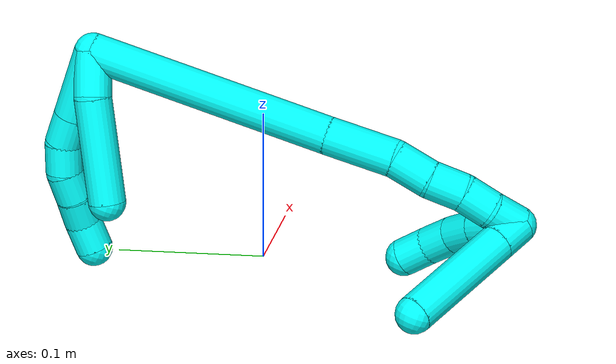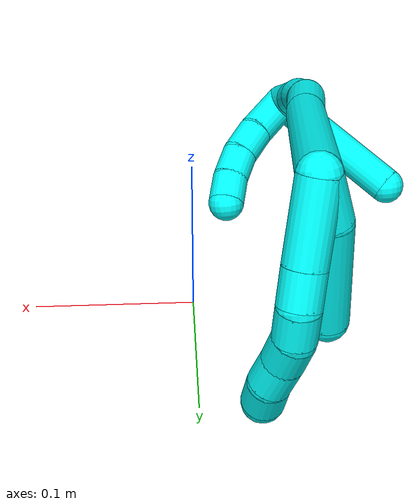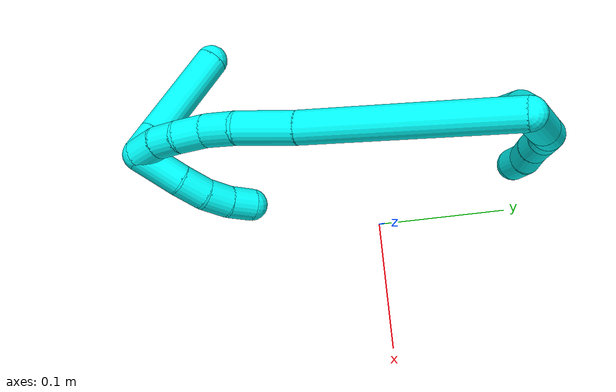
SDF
<sdf version="1.7">
 <world name="default">
  <model name="3">
   <static>0</static>
   <link name="3">
    <collision name="collision-cylinder-e_1_2_8">
     <pose>0.005854 0.000753 -0.023373 -3.10938 0.245285 -2.88167</pose>
     <geometry><cylinder><radius>0.0125</radius><length>0.048212</length></cylinder></geometry>
     <surface>
      <friction><ode><mu>1.16</mu><mu2>1.16</mu2><slip1>0</slip1><slip2>0</slip2></ode></friction>
      <contact><ode><kp>1e+06</kp><kd>1</kd><max_vel>0</max_vel><min_depth>0.001</min_depth></ode></contact>
     </surface>
    </collision>
    <visual name="visual-cylinder-e_1_2_8">
     <pose>0.005854 0.000753 -0.023373 -3.10938 0.245285 -2.88167</pose>
     <geometry><cylinder><radius>0.0125</radius><length>0.048212</length></cylinder></geometry>
     <material><ambient>0.003922 1 0.996078 1</ambient></material>
    </visual>
    <collision name="collision-cylinder-e_2_8_9">
     <pose>0.014175 0.001824 -0.057246 -3.11137 0.230662 -2.88219</pose>
     <geometry><cylinder><radius>0.0125</radius><length>0.021582</length></cylinder></geometry>
     <surface>
      <friction><ode><mu>1.16</mu><mu2>1.16</mu2><slip1>0</slip1><slip2>0</slip2></ode></friction>
      <contact><ode><kp>1e+06</kp><kd>1</kd><max_vel>0</max_vel><min_depth>0.001</min_depth></ode></contact>
     </surface>
    </collision>
    <visual name="visual-cylinder-e_2_8_9">
     <pose>0.014175 0.001824 -0.057246 -3.11137 0.230662 -2.88219</pose>
     <geometry><cylinder><radius>0.0125</radius><length>0.021582</length></cylinder></geometry>
     <material><ambient>0.003922 1 0.996078 1</ambient></material>
    </visual>
    <collision name="collision-cylinder-e_3_9_10">
     <pose>0.018653 -0.000953 -0.077092 2.82185 0.201501 1.12</pose>
     <geometry><cylinder><radius>0.0125</radius><length>0.020095</length></cylinder></geometry>
     <surface>
      <friction><ode><mu>1.16</mu><mu2>1.16</mu2><slip1>0</slip1><slip2>0</slip2></ode></friction>
      <contact><ode><kp>1e+06</kp><kd>1</kd><max_vel>0</max_vel><min_depth>0.001</min_depth></ode></contact>
     </surface>
    </collision>
    <visual name="visual-cylinder-e_3_9_10">
     <pose>0.018653 -0.000953 -0.077092 2.82185 0.201501 1.12</pose>
     <geometry><cylinder><radius>0.0125</radius><length>0.020095</length></cylinder></geometry>
     <material><ambient>0.003922 1 0.996078 1</ambient></material>
    </visual>
    <collision name="collision-cylinder-e_4_10_11">
     <pose>0.024407 -0.009281 -0.094148 2.54528 0.381934 1.12304</pose>
     <geometry><cylinder><radius>0.0125</radius><length>0.020085</length></cylinder></geometry>
     <surface>
      <friction><ode><mu>1.16</mu><mu2>1.16</mu2><slip1>0</slip1><slip2>0</slip2></ode></friction>
      <contact><ode><kp>1e+06</kp><kd>1</kd><max_vel>0</max_vel><min_depth>0.001</min_depth></ode></contact>
     </surface>
    </collision>
    <visual name="visual-cylinder-e_4_10_11">
     <pose>0.024407 -0.009281 -0.094148 2.54528 0.381934 1.12304</pose>
     <geometry><cylinder><radius>0.0125</radius><length>0.020085</length></cylinder></geometry>
     <material><ambient>0.003922 1 0.996078 1</ambient></material>
    </visual>
    <collision name="collision-cylinder-e_5_11_12">
     <pose>0.03264 -0.019013 -0.109579 2.61394 0.465661 1.44089</pose>
     <geometry><cylinder><radius>0.0125</radius><length>0.020001</length></cylinder></geometry>
     <surface>
      <friction><ode><mu>1.16</mu><mu2>1.16</mu2><slip1>0</slip1><slip2>0</slip2></ode></friction>
      <contact><ode><kp>1e+06</kp><kd>1</kd><max_vel>0</max_vel><min_depth>0.001</min_depth></ode></contact>
     </surface>
    </collision>
    <visual name="visual-cylinder-e_5_11_12">
     <pose>0.03264 -0.019013 -0.109579 2.61394 0.465661 1.44089</pose>
     <geometry><cylinder><radius>0.0125</radius><length>0.020001</length></cylinder></geometry>
     <material><ambient>0.003922 1 0.996078 1</ambient></material>
    </visual>
    <collision name="collision-cylinder-e_6_12_6">
     <pose>0.039712 -0.029595 -0.124821 2.46165 0.260766 0.710036</pose>
     <geometry><cylinder><radius>0.0125</radius><length>0.020024</length></cylinder></geometry>
     <surface>
      <friction><ode><mu>1.16</mu><mu2>1.16</mu2><slip1>0</slip1><slip2>0</slip2></ode></friction>
      <contact><ode><kp>1e+06</kp><kd>1</kd><max_vel>0</max_vel><min_depth>0.001</min_depth></ode></contact>
     </surface>
    </collision>
    <visual name="visual-cylinder-e_6_12_6">
     <pose>0.039712 -0.029595 -0.124821 2.46165 0.260766 0.710036</pose>
     <geometry><cylinder><radius>0.0125</radius><length>0.020024</length></cylinder></geometry>
     <material><ambient>0.003922 1 0.996078 1</ambient></material>
    </visual>
    <collision name="collision-cylinder-e_1_2_13">
     <pose>-0.001916 -0.00535 -0.013674 2.76865 -0.129749 -0.663269</pose>
     <geometry><cylinder><radius>0.0125</radius><length>0.029616</length></cylinder></geometry>
     <surface>
      <friction><ode><mu>1.16</mu><mu2>1.16</mu2><slip1>0</slip1><slip2>0</slip2></ode></friction>
      <contact><ode><kp>1e+06</kp><kd>1</kd><max_vel>0</max_vel><min_depth>0.001</min_depth></ode></contact>
     </surface>
    </collision>
    <visual name="visual-cylinder-e_1_2_13">
     <pose>-0.001916 -0.00535 -0.013674 2.76865 -0.129749 -0.663269</pose>
     <geometry><cylinder><radius>0.0125</radius><length>0.029616</length></cylinder></geometry>
     <material><ambient>0.003922 1 0.996078 1</ambient></material>
    </visual>
    <collision name="collision-cylinder-e_2_13_5">
     <pose>-0.000578 -0.02627 -0.058741 2.68115 0.092599 0.390342</pose>
     <geometry><cylinder><radius>0.0125</radius><length>0.070384</length></cylinder></geometry>
     <surface>
      <friction><ode><mu>1.16</mu><mu2>1.16</mu2><slip1>0</slip1><slip2>0</slip2></ode></friction>
      <contact><ode><kp>1e+06</kp><kd>1</kd><max_vel>0</max_vel><min_depth>0.001</min_depth></ode></contact>
     </surface>
    </collision>
    <visual name="visual-cylinder-e_2_13_5">
     <pose>-0.000578 -0.02627 -0.058741 2.68115 0.092599 0.390342</pose>
     <geometry><cylinder><radius>0.0125</radius><length>0.070384</length></cylinder></geometry>
     <material><ambient>0.003922 1 0.996078 1</ambient></material>
    </visual>
    <collision name="collision-cylinder-e_1_2_14">
     <pose>0.001511 -0.081553 0.003239 1.5311 0.018513 0.017792</pose>
     <geometry><cylinder><radius>0.0125</radius><length>0.163263</length></cylinder></geometry>
     <surface>
      <friction><ode><mu>1.16</mu><mu2>1.16</mu2><slip1>0</slip1><slip2>0</slip2></ode></friction>
      <contact><ode><kp>1e+06</kp><kd>1</kd><max_vel>0</max_vel><min_depth>0.001</min_depth></ode></contact>
     </surface>
    </collision>
    <visual name="visual-cylinder-e_1_2_14">
     <pose>0.001511 -0.081553 0.003239 1.5311 0.018513 0.017792</pose>
     <geometry><cylinder><radius>0.0125</radius><length>0.163263</length></cylinder></geometry>
     <material><ambient>0.003922 1 0.996078 1</ambient></material>
    </visual>
    <collision name="collision-cylinder-e_2_14_15">
     <pose>0.002281 -0.185947 0.00791 1.50822 -0.032374 -0.030409</pose>
     <geometry><cylinder><radius>0.0125</radius><length>0.045794</length></cylinder></geometry>
     <surface>
      <friction><ode><mu>1.16</mu><mu2>1.16</mu2><slip1>0</slip1><slip2>0</slip2></ode></friction>
      <contact><ode><kp>1e+06</kp><kd>1</kd><max_vel>0</max_vel><min_depth>0.001</min_depth></ode></contact>
     </surface>
    </collision>
    <visual name="visual-cylinder-e_2_14_15">
     <pose>0.002281 -0.185947 0.00791 1.50822 -0.032374 -0.030409</pose>
     <geometry><cylinder><radius>0.0125</radius><length>0.045794</length></cylinder></geometry>
     <material><ambient>0.003922 1 0.996078 1</ambient></material>
    </visual>
    <collision name="collision-cylinder-e_3_15_16">
     <pose>0.002095 -0.221485 0.007219 1.73635 0.043066 0.050856</pose>
     <geometry><cylinder><radius>0.0125</radius><length>0.025772</length></cylinder></geometry>
     <surface>
      <friction><ode><mu>1.16</mu><mu2>1.16</mu2><slip1>0</slip1><slip2>0</slip2></ode></friction>
      <contact><ode><kp>1e+06</kp><kd>1</kd><max_vel>0</max_vel><min_depth>0.001</min_depth></ode></contact>
     </surface>
    </collision>
    <visual name="visual-cylinder-e_3_15_16">
     <pose>0.002095 -0.221485 0.007219 1.73635 0.043066 0.050856</pose>
     <geometry><cylinder><radius>0.0125</radius><length>0.025772</length></cylinder></geometry>
     <material><ambient>0.003922 1 0.996078 1</ambient></material>
    </visual>
    <collision name="collision-cylinder-e_4_16_17">
     <pose>0.004571 -0.245636 0.004788 1.59786 0.166143 0.17068</pose>
     <geometry><cylinder><radius>0.0125</radius><length>0.023236</length></cylinder></geometry>
     <surface>
      <friction><ode><mu>1.16</mu><mu2>1.16</mu2><slip1>0</slip1><slip2>0</slip2></ode></friction>
      <contact><ode><kp>1e+06</kp><kd>1</kd><max_vel>0</max_vel><min_depth>0.001</min_depth></ode></contact>
     </surface>
    </collision>
    <visual name="visual-cylinder-e_4_16_17">
     <pose>0.004571 -0.245636 0.004788 1.59786 0.166143 0.17068</pose>
     <geometry><cylinder><radius>0.0125</radius><length>0.023236</length></cylinder></geometry>
     <material><ambient>0.003922 1 0.996078 1</ambient></material>
    </visual>
    <collision name="collision-cylinder-e_5_17_18">
     <pose>0.008387 -0.267002 0.002272 1.78974 0.184434 0.229624</pose>
     <geometry><cylinder><radius>0.0125</radius><length>0.020659</length></cylinder></geometry>
     <surface>
      <friction><ode><mu>1.16</mu><mu2>1.16</mu2><slip1>0</slip1><slip2>0</slip2></ode></friction>
      <contact><ode><kp>1e+06</kp><kd>1</kd><max_vel>0</max_vel><min_depth>0.001</min_depth></ode></contact>
     </surface>
    </collision>
    <visual name="visual-cylinder-e_5_17_18">
     <pose>0.008387 -0.267002 0.002272 1.78974 0.184434 0.229624</pose>
     <geometry><cylinder><radius>0.0125</radius><length>0.020659</length></cylinder></geometry>
     <material><ambient>0.003922 1 0.996078 1</ambient></material>
    </visual>
    <collision name="collision-cylinder-e_6_18_1">
     <pose>0.01456 -0.286409 -0.002103 1.79546 0.413971 0.515088</pose>
     <geometry><cylinder><radius>0.0125</radius><length>0.021277</length></cylinder></geometry>
     <surface>
      <friction><ode><mu>1.16</mu><mu2>1.16</mu2><slip1>0</slip1><slip2>0</slip2></ode></friction>
      <contact><ode><kp>1e+06</kp><kd>1</kd><max_vel>0</max_vel><min_depth>0.001</min_depth></ode></contact>
     </surface>
    </collision>
    <visual name="visual-cylinder-e_6_18_1">
     <pose>0.01456 -0.286409 -0.002103 1.79546 0.413971 0.515088</pose>
     <geometry><cylinder><radius>0.0125</radius><length>0.021277</length></cylinder></geometry>
     <material><ambient>0.003922 1 0.996078 1</ambient></material>
    </visual>
    <collision name="collision-cylinder-e_1_1_19">
     <pose>0.029525 -0.283647 -0.012387 -2.15557 0.628579 -1.08823</pose>
     <geometry><cylinder><radius>0.0125</radius><length>0.036345</length></cylinder></geometry>
     <surface>
      <friction><ode><mu>1.16</mu><mu2>1.16</mu2><slip1>0</slip1><slip2>0</slip2></ode></friction>
      <contact><ode><kp>1e+06</kp><kd>1</kd><max_vel>0</max_vel><min_depth>0.001</min_depth></ode></contact>
     </surface>
    </collision>
    <visual name="visual-cylinder-e_1_1_19">
     <pose>0.029525 -0.283647 -0.012387 -2.15557 0.628579 -1.08823</pose>
     <geometry><cylinder><radius>0.0125</radius><length>0.036345</length></cylinder></geometry>
     <material><ambient>0.003922 1 0.996078 1</ambient></material>
    </visual>
    <collision name="collision-cylinder-e_2_19_20">
     <pose>0.046273 -0.264304 -0.026838 -2.30042 0.567732 -1.15594</pose>
     <geometry><cylinder><radius>0.0125</radius><length>0.022552</length></cylinder></geometry>
     <surface>
      <friction><ode><mu>1.16</mu><mu2>1.16</mu2><slip1>0</slip1><slip2>0</slip2></ode></friction>
      <contact><ode><kp>1e+06</kp><kd>1</kd><max_vel>0</max_vel><min_depth>0.001</min_depth></ode></contact>
     </surface>
    </collision>
    <visual name="visual-cylinder-e_2_19_20">
     <pose>0.046273 -0.264304 -0.026838 -2.30042 0.567732 -1.15594</pose>
     <geometry><cylinder><radius>0.0125</radius><length>0.022552</length></cylinder></geometry>
     <material><ambient>0.003922 1 0.996078 1</ambient></material>
    </visual>
    <collision name="collision-cylinder-e_3_20_21">
     <pose>0.056175 -0.250718 -0.040302 -2.40226 0.378762 -0.91876</pose>
     <geometry><cylinder><radius>0.0125</radius><length>0.020761</length></cylinder></geometry>
     <surface>
      <friction><ode><mu>1.16</mu><mu2>1.16</mu2><slip1>0</slip1><slip2>0</slip2></ode></friction>
      <contact><ode><kp>1e+06</kp><kd>1</kd><max_vel>0</max_vel><min_depth>0.001</min_depth></ode></contact>
     </surface>
    </collision>
    <visual name="visual-cylinder-e_3_20_21">
     <pose>0.056175 -0.250718 -0.040302 -2.40226 0.378762 -0.91876</pose>
     <geometry><cylinder><radius>0.0125</radius><length>0.020761</length></cylinder></geometry>
     <material><ambient>0.003922 1 0.996078 1</ambient></material>
    </visual>
    <collision name="collision-cylinder-e_4_21_4">
     <pose>0.062046 -0.237604 -0.054882 -2.41568 0.201206 -0.519577</pose>
     <geometry><cylinder><radius>0.0125</radius><length>0.020343</length></cylinder></geometry>
     <surface>
      <friction><ode><mu>1.16</mu><mu2>1.16</mu2><slip1>0</slip1><slip2>0</slip2></ode></friction>
      <contact><ode><kp>1e+06</kp><kd>1</kd><max_vel>0</max_vel><min_depth>0.001</min_depth></ode></contact>
     </surface>
    </collision>
    <visual name="visual-cylinder-e_4_21_4">
     <pose>0.062046 -0.237604 -0.054882 -2.41568 0.201206 -0.519577</pose>
     <geometry><cylinder><radius>0.0125</radius><length>0.020343</length></cylinder></geometry>
     <material><ambient>0.003922 1 0.996078 1</ambient></material>
    </visual>
    <collision name="collision-cylinder-e_1_1_22">
     <pose>0.011566 -0.292227 -0.010931 -2.63707 -0.763095 1.99952</pose>
     <geometry><cylinder><radius>0.0125</radius><length>0.021048</length></cylinder></geometry>
     <surface>
      <friction><ode><mu>1.16</mu><mu2>1.16</mu2><slip1>0</slip1><slip2>0</slip2></ode></friction>
      <contact><ode><kp>1e+06</kp><kd>1</kd><max_vel>0</max_vel><min_depth>0.001</min_depth></ode></contact>
     </surface>
    </collision>
    <visual name="visual-cylinder-e_1_1_22">
     <pose>0.011566 -0.292227 -0.010931 -2.63707 -0.763095 1.99952</pose>
     <geometry><cylinder><radius>0.0125</radius><length>0.021048</length></cylinder></geometry>
     <material><ambient>0.003922 1 0.996078 1</ambient></material>
    </visual>
    <collision name="collision-cylinder-e_2_22_3">
     <pose>-0.023014 -0.274726 -0.042522 -2.63532 -0.76385 1.9972</pose>
     <geometry><cylinder><radius>0.0125</radius><length>0.078952</length></cylinder></geometry>
     <surface>
      <friction><ode><mu>1.16</mu><mu2>1.16</mu2><slip1>0</slip1><slip2>0</slip2></ode></friction>
      <contact><ode><kp>1e+06</kp><kd>1</kd><max_vel>0</max_vel><min_depth>0.001</min_depth></ode></contact>
     </surface>
    </collision>
    <visual name="visual-cylinder-e_2_22_3">
     <pose>-0.023014 -0.274726 -0.042522 -2.63532 -0.76385 1.9972</pose>
     <geometry><cylinder><radius>0.0125</radius><length>0.078952</length></cylinder></geometry>
     <material><ambient>0.003922 1 0.996078 1</ambient></material>
    </visual>
    <collision name="collision-sphere-3">
     <pose>-0.05032 -0.260901 -0.067454 0 -0 0</pose>
     <geometry><sphere><radius>0.0125</radius></sphere></geometry>
     <surface>
      <friction><ode><mu>1.16</mu><mu2>1.16</mu2><slip1>0</slip1><slip2>0</slip2></ode></friction>
      <contact><ode><kp>1e+06</kp><kd>1</kd><max_vel>0</max_vel><min_depth>0.001</min_depth></ode></contact>
     </surface>
    </collision>
    <visual name="visual-sphere-3">
     <pose>-0.05032 -0.260901 -0.067454 0 -0 0</pose>
     <geometry><sphere><radius>0.0125</radius></sphere></geometry>
     <material><ambient>0.003922 1 0.996078 1</ambient></material>
    </visual>
    <collision name="collision-sphere-22">
     <pose>0.004292 -0.288551 -0.017589 0 -0 0</pose>
     <geometry><sphere><radius>0.0125</radius></sphere></geometry>
     <surface>
      <friction><ode><mu>1.16</mu><mu2>1.16</mu2><slip1>0</slip1><slip2>0</slip2></ode></friction>
      <contact><ode><kp>1e+06</kp><kd>1</kd><max_vel>0</max_vel><min_depth>0.001</min_depth></ode></contact>
     </surface>
    </collision>
    <visual name="visual-sphere-22">
     <pose>0.004292 -0.288551 -0.017589 0 -0 0</pose>
     <geometry><sphere><radius>0.0125</radius></sphere></geometry>
     <material><ambient>0.003922 1 0.996078 1</ambient></material>
    </visual>
    <collision name="collision-sphere-4">
     <pose>0.064079 -0.230989 -0.062336 0 -0 0</pose>
     <geometry><sphere><radius>0.0125</radius></sphere></geometry>
     <surface>
      <friction><ode><mu>1.16</mu><mu2>1.16</mu2><slip1>0</slip1><slip2>0</slip2></ode></friction>
      <contact><ode><kp>1e+06</kp><kd>1</kd><max_vel>0</max_vel><min_depth>0.001</min_depth></ode></contact>
     </surface>
    </collision>
    <visual name="visual-sphere-4">
     <pose>0.064079 -0.230989 -0.062336 0 -0 0</pose>
     <geometry><sphere><radius>0.0125</radius></sphere></geometry>
     <material><ambient>0.003922 1 0.996078 1</ambient></material>
    </visual>
    <collision name="collision-sphere-21">
     <pose>0.060013 -0.24422 -0.047429 0 -0 0</pose>
     <geometry><sphere><radius>0.0125</radius></sphere></geometry>
     <surface>
      <friction><ode><mu>1.16</mu><mu2>1.16</mu2><slip1>0</slip1><slip2>0</slip2></ode></friction>
      <contact><ode><kp>1e+06</kp><kd>1</kd><max_vel>0</max_vel><min_depth>0.001</min_depth></ode></contact>
     </surface>
    </collision>
    <visual name="visual-sphere-21">
     <pose>0.060013 -0.24422 -0.047429 0 -0 0</pose>
     <geometry><sphere><radius>0.0125</radius></sphere></geometry>
     <material><ambient>0.003922 1 0.996078 1</ambient></material>
    </visual>
    <collision name="collision-sphere-20">
     <pose>0.052336 -0.257217 -0.033176 0 -0 0</pose>
     <geometry><sphere><radius>0.0125</radius></sphere></geometry>
     <surface>
      <friction><ode><mu>1.16</mu><mu2>1.16</mu2><slip1>0</slip1><slip2>0</slip2></ode></friction>
      <contact><ode><kp>1e+06</kp><kd>1</kd><max_vel>0</max_vel><min_depth>0.001</min_depth></ode></contact>
     </surface>
    </collision>
    <visual name="visual-sphere-20">
     <pose>0.052336 -0.257217 -0.033176 0 -0 0</pose>
     <geometry><sphere><radius>0.0125</radius></sphere></geometry>
     <material><ambient>0.003922 1 0.996078 1</ambient></material>
    </visual>
    <collision name="collision-sphere-12">
     <pose>0.03713 -0.023512 -0.117299 0 -0 0</pose>
     <geometry><sphere><radius>0.0125</radius></sphere></geometry>
     <surface>
      <friction><ode><mu>1.16</mu><mu2>1.16</mu2><slip1>0</slip1><slip2>0</slip2></ode></friction>
      <contact><ode><kp>1e+06</kp><kd>1</kd><max_vel>0</max_vel><min_depth>0.001</min_depth></ode></contact>
     </surface>
    </collision>
    <visual name="visual-sphere-12">
     <pose>0.03713 -0.023512 -0.117299 0 -0 0</pose>
     <geometry><sphere><radius>0.0125</radius></sphere></geometry>
     <material><ambient>0.003922 1 0.996078 1</ambient></material>
    </visual>
    <collision name="collision-sphere-11">
     <pose>0.02815 -0.014514 -0.101858 0 -0 0</pose>
     <geometry><sphere><radius>0.0125</radius></sphere></geometry>
     <surface>
      <friction><ode><mu>1.16</mu><mu2>1.16</mu2><slip1>0</slip1><slip2>0</slip2></ode></friction>
      <contact><ode><kp>1e+06</kp><kd>1</kd><max_vel>0</max_vel><min_depth>0.001</min_depth></ode></contact>
     </surface>
    </collision>
    <visual name="visual-sphere-11">
     <pose>0.02815 -0.014514 -0.101858 0 -0 0</pose>
     <geometry><sphere><radius>0.0125</radius></sphere></geometry>
     <material><ambient>0.003922 1 0.996078 1</ambient></material>
    </visual>
    <collision name="collision-sphere-10">
     <pose>0.020664 -0.004047 -0.086437 0 -0 0</pose>
     <geometry><sphere><radius>0.0125</radius></sphere></geometry>
     <surface>
      <friction><ode><mu>1.16</mu><mu2>1.16</mu2><slip1>0</slip1><slip2>0</slip2></ode></friction>
      <contact><ode><kp>1e+06</kp><kd>1</kd><max_vel>0</max_vel><min_depth>0.001</min_depth></ode></contact>
     </surface>
    </collision>
    <visual name="visual-sphere-10">
     <pose>0.020664 -0.004047 -0.086437 0 -0 0</pose>
     <geometry><sphere><radius>0.0125</radius></sphere></geometry>
     <material><ambient>0.003922 1 0.996078 1</ambient></material>
    </visual>
    <collision name="collision-sphere-9">
     <pose>0.016642 0.002141 -0.067746 0 -0 0</pose>
     <geometry><sphere><radius>0.0125</radius></sphere></geometry>
     <surface>
      <friction><ode><mu>1.16</mu><mu2>1.16</mu2><slip1>0</slip1><slip2>0</slip2></ode></friction>
      <contact><ode><kp>1e+06</kp><kd>1</kd><max_vel>0</max_vel><min_depth>0.001</min_depth></ode></contact>
     </surface>
    </collision>
    <visual name="visual-sphere-9">
     <pose>0.016642 0.002141 -0.067746 0 -0 0</pose>
     <geometry><sphere><radius>0.0125</radius></sphere></geometry>
     <material><ambient>0.003922 1 0.996078 1</ambient></material>
    </visual>
    <collision name="collision-sphere-2">
     <geometry><sphere><radius>0.0125</radius></sphere></geometry>
     <surface>
      <friction><ode><mu>1.16</mu><mu2>1.16</mu2><slip1>0</slip1><slip2>0</slip2></ode></friction>
      <contact><ode><kp>1e+06</kp><kd>1</kd><max_vel>0</max_vel><min_depth>0.001</min_depth></ode></contact>
     </surface>
    </collision>
    <visual name="visual-sphere-2">
     <geometry><sphere><radius>0.0125</radius></sphere></geometry>
     <material><ambient>0.003922 1 0.996078 1</ambient></material>
    </visual>
    <collision name="collision-sphere-19">
     <pose>0.04021 -0.27139 -0.020501 0 -0 0</pose>
     <geometry><sphere><radius>0.0125</radius></sphere></geometry>
     <surface>
      <friction><ode><mu>1.16</mu><mu2>1.16</mu2><slip1>0</slip1><slip2>0</slip2></ode></friction>
      <contact><ode><kp>1e+06</kp><kd>1</kd><max_vel>0</max_vel><min_depth>0.001</min_depth></ode></contact>
     </surface>
    </collision>
    <visual name="visual-sphere-19">
     <pose>0.04021 -0.27139 -0.020501 0 -0 0</pose>
     <geometry><sphere><radius>0.0125</radius></sphere></geometry>
     <material><ambient>0.003922 1 0.996078 1</ambient></material>
    </visual>
    <collision name="collision-sphere-8">
     <pose>0.011708 0.001507 -0.046745 0 -0 0</pose>
     <geometry><sphere><radius>0.0125</radius></sphere></geometry>
     <surface>
      <friction><ode><mu>1.16</mu><mu2>1.16</mu2><slip1>0</slip1><slip2>0</slip2></ode></friction>
      <contact><ode><kp>1e+06</kp><kd>1</kd><max_vel>0</max_vel><min_depth>0.001</min_depth></ode></contact>
     </surface>
    </collision>
    <visual name="visual-sphere-8">
     <pose>0.011708 0.001507 -0.046745 0 -0 0</pose>
     <geometry><sphere><radius>0.0125</radius></sphere></geometry>
     <material><ambient>0.003922 1 0.996078 1</ambient></material>
    </visual>
    <collision name="collision-sphere-6">
     <pose>0.042293 -0.035677 -0.132343 0 -0 0</pose>
     <geometry><sphere><radius>0.0125</radius></sphere></geometry>
     <surface>
      <friction><ode><mu>1.16</mu><mu2>1.16</mu2><slip1>0</slip1><slip2>0</slip2></ode></friction>
      <contact><ode><kp>1e+06</kp><kd>1</kd><max_vel>0</max_vel><min_depth>0.001</min_depth></ode></contact>
     </surface>
    </collision>
    <visual name="visual-sphere-6">
     <pose>0.042293 -0.035677 -0.132343 0 -0 0</pose>
     <geometry><sphere><radius>0.0125</radius></sphere></geometry>
     <material><ambient>0.003922 1 0.996078 1</ambient></material>
    </visual>
    <collision name="collision-sphere-13">
     <pose>-0.003832 -0.0107 -0.027349 0 -0 0</pose>
     <geometry><sphere><radius>0.0125</radius></sphere></geometry>
     <surface>
      <friction><ode><mu>1.16</mu><mu2>1.16</mu2><slip1>0</slip1><slip2>0</slip2></ode></friction>
      <contact><ode><kp>1e+06</kp><kd>1</kd><max_vel>0</max_vel><min_depth>0.001</min_depth></ode></contact>
     </surface>
    </collision>
    <visual name="visual-sphere-13">
     <pose>-0.003832 -0.0107 -0.027349 0 -0 0</pose>
     <geometry><sphere><radius>0.0125</radius></sphere></geometry>
     <material><ambient>0.003922 1 0.996078 1</ambient></material>
    </visual>
    <collision name="collision-sphere-5">
     <pose>0.002676 -0.04184 -0.090132 0 -0 0</pose>
     <geometry><sphere><radius>0.0125</radius></sphere></geometry>
     <surface>
      <friction><ode><mu>1.16</mu><mu2>1.16</mu2><slip1>0</slip1><slip2>0</slip2></ode></friction>
      <contact><ode><kp>1e+06</kp><kd>1</kd><max_vel>0</max_vel><min_depth>0.001</min_depth></ode></contact>
     </surface>
    </collision>
    <visual name="visual-sphere-5">
     <pose>0.002676 -0.04184 -0.090132 0 -0 0</pose>
     <geometry><sphere><radius>0.0125</radius></sphere></geometry>
     <material><ambient>0.003922 1 0.996078 1</ambient></material>
    </visual>
    <collision name="collision-sphere-14">
     <pose>0.003022 -0.163107 0.006478 0 -0 0</pose>
     <geometry><sphere><radius>0.0125</radius></sphere></geometry>
     <surface>
      <friction><ode><mu>1.16</mu><mu2>1.16</mu2><slip1>0</slip1><slip2>0</slip2></ode></friction>
      <contact><ode><kp>1e+06</kp><kd>1</kd><max_vel>0</max_vel><min_depth>0.001</min_depth></ode></contact>
     </surface>
    </collision>
    <visual name="visual-sphere-14">
     <pose>0.003022 -0.163107 0.006478 0 -0 0</pose>
     <geometry><sphere><radius>0.0125</radius></sphere></geometry>
     <material><ambient>0.003922 1 0.996078 1</ambient></material>
    </visual>
    <collision name="collision-sphere-15">
     <pose>0.00154 -0.208787 0.009341 0 -0 0</pose>
     <geometry><sphere><radius>0.0125</radius></sphere></geometry>
     <surface>
      <friction><ode><mu>1.16</mu><mu2>1.16</mu2><slip1>0</slip1><slip2>0</slip2></ode></friction>
      <contact><ode><kp>1e+06</kp><kd>1</kd><max_vel>0</max_vel><min_depth>0.001</min_depth></ode></contact>
     </surface>
    </collision>
    <visual name="visual-sphere-15">
     <pose>0.00154 -0.208787 0.009341 0 -0 0</pose>
     <geometry><sphere><radius>0.0125</radius></sphere></geometry>
     <material><ambient>0.003922 1 0.996078 1</ambient></material>
    </visual>
    <collision name="collision-sphere-16">
     <pose>0.00265 -0.234183 0.005098 0 -0 0</pose>
     <geometry><sphere><radius>0.0125</radius></sphere></geometry>
     <surface>
      <friction><ode><mu>1.16</mu><mu2>1.16</mu2><slip1>0</slip1><slip2>0</slip2></ode></friction>
      <contact><ode><kp>1e+06</kp><kd>1</kd><max_vel>0</max_vel><min_depth>0.001</min_depth></ode></contact>
     </surface>
    </collision>
    <visual name="visual-sphere-16">
     <pose>0.00265 -0.234183 0.005098 0 -0 0</pose>
     <geometry><sphere><radius>0.0125</radius></sphere></geometry>
     <material><ambient>0.003922 1 0.996078 1</ambient></material>
    </visual>
    <collision name="collision-sphere-17">
     <pose>0.006492 -0.25709 0.004478 0 -0 0</pose>
     <geometry><sphere><radius>0.0125</radius></sphere></geometry>
     <surface>
      <friction><ode><mu>1.16</mu><mu2>1.16</mu2><slip1>0</slip1><slip2>0</slip2></ode></friction>
      <contact><ode><kp>1e+06</kp><kd>1</kd><max_vel>0</max_vel><min_depth>0.001</min_depth></ode></contact>
     </surface>
    </collision>
    <visual name="visual-sphere-17">
     <pose>0.006492 -0.25709 0.004478 0 -0 0</pose>
     <geometry><sphere><radius>0.0125</radius></sphere></geometry>
     <material><ambient>0.003922 1 0.996078 1</ambient></material>
    </visual>
    <collision name="collision-sphere-18">
     <pose>0.010281 -0.276914 6.6e-05 0 -0 0</pose>
     <geometry><sphere><radius>0.0125</radius></sphere></geometry>
     <surface>
      <friction><ode><mu>1.16</mu><mu2>1.16</mu2><slip1>0</slip1><slip2>0</slip2></ode></friction>
      <contact><ode><kp>1e+06</kp><kd>1</kd><max_vel>0</max_vel><min_depth>0.001</min_depth></ode></contact>
     </surface>
    </collision>
    <visual name="visual-sphere-18">
     <pose>0.010281 -0.276914 6.6e-05 0 -0 0</pose>
     <geometry><sphere><radius>0.0125</radius></sphere></geometry>
     <material><ambient>0.003922 1 0.996078 1</ambient></material>
    </visual>
    <collision name="collision-sphere-1">
     <pose>0.018839 -0.295904 -0.004273 0 -0 0</pose>
     <geometry><sphere><radius>0.0125</radius></sphere></geometry>
     <surface>
      <friction><ode><mu>1.16</mu><mu2>1.16</mu2><slip1>0</slip1><slip2>0</slip2></ode></friction>
      <contact><ode><kp>1e+06</kp><kd>1</kd><max_vel>0</max_vel><min_depth>0.001</min_depth></ode></contact>
     </surface>
    </collision>
    <visual name="visual-sphere-1">
     <pose>0.018839 -0.295904 -0.004273 0 -0 0</pose>
     <geometry><sphere><radius>0.0125</radius></sphere></geometry>
     <material><ambient>0.003922 1 0.996078 1</ambient></material>
    </visual>
    <inertial>
     <pose>0.009026 -0.136153 -0.027251 0 -0 0</pose>
     <mass>0.75</mass>
     <inertia>
      <ixx>0.000444</ixx>
      <ixy>0</ixy>
      <ixz>0</ixz>
      <iyy>4.9e-05</iyy>
      <iyz>0</iyz>
      <izz>0.000365</izz>
     </inertia>
    </inertial>
   </link>
   <pose>-0.061194 0.101911 0.153145 0.331777 0.120381 -0.06428</pose>
  </model>
 </world>
</sdf>
